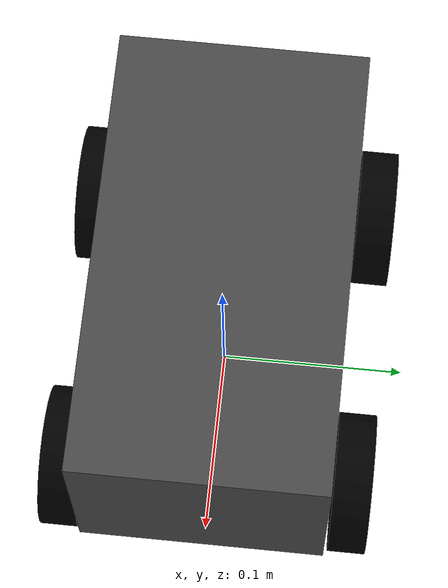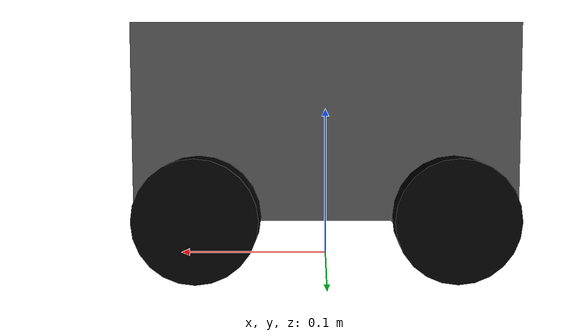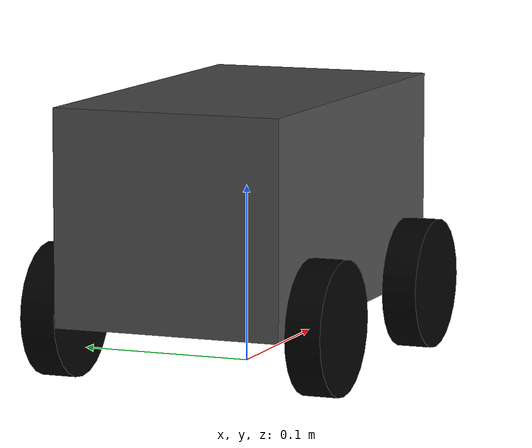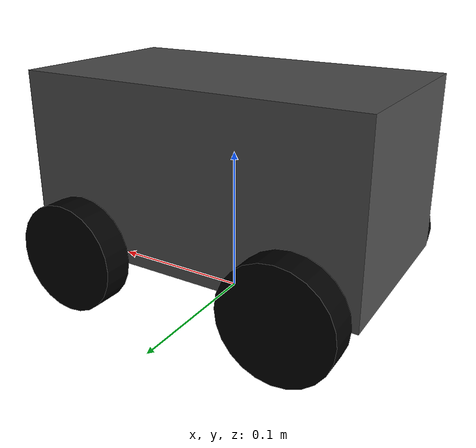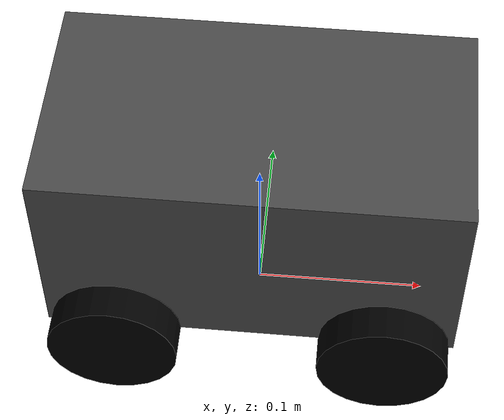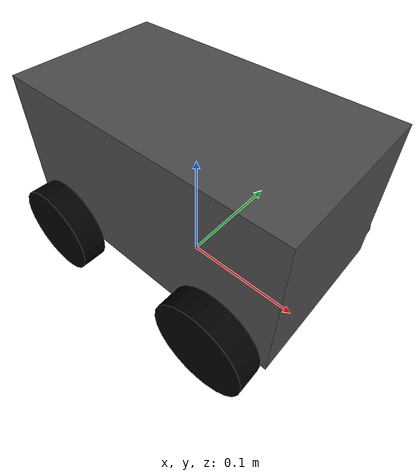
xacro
<?xml version="1.0"?>
<robot xmlns:xacro="http://www.ros.org/wiki/xacro">

  <link name="base_footprint"/>

  <link name="base_link">

    <inertial>
      <origin xyz="0 0 0.09424" rpy="0 0 0"/>
      <mass value="3"/>
      <inertia ixx="0.00783" ixy="0.0" ixz="0.0"
               iyy="0.01741" iyz="0.0"
               izz="0.01803"/>
    </inertial>

    <visual>
      <origin xyz="0 0 0.09424" rpy="0 0 0"/>
      <geometry>
        <box size="0.235 0.130 0.12"/>
      </geometry>
      <material name="chassis_grey">
        <color rgba="0.3 0.3 0.3 1.0"/>
      </material>
    </visual>

    <collision>
      <origin xyz="0 0 0.09424" rpy="0 0 0"/>
      <geometry>
        <box size="0.235 0.130 0.12"/>
      </geometry>
    </collision>
  </link>

  <joint name="base_footprint_to_base_link" type="fixed">
    <parent link="base_footprint"/>
    <child link="base_link"/>
    <origin xyz="0 0 0" rpy="0 0 0"/>
  </joint>

  <!-- ================= WHEELS MACRO ================= -->
  <xacro:macro name="wheel" params="name x y">
    <link name="${name}_link">
      <visual>
        <geometry>
          <cylinder radius="0.03725" length="0.02"/>
        </geometry>

        <material name="wheel_black">
          <color rgba="0.0 0.0 0.0 1.0"/>
        </material>

        <origin xyz="0 0 0" rpy="1.57 0 0"/>
      </visual>

      <inertial>
        <origin xyz="0 0 0" rpy="0 0 0"/>
        <mass value="0.1"/>
        <inertia ixx="0.0001" ixy="0.0" ixz="0.0"
                 iyy="0.0001" iyz="0.0"
                 izz="0.0001"/>
      </inertial>

      <collision>
        <origin xyz="0 0 0" rpy="1.57 0 0"/>
        <geometry>
          <cylinder radius="0.03725" length="0.02"/>
        </geometry>
      </collision>

    </link>

    <joint name="${name}_joint" type="continuous">
      <parent link="base_link"/>
      <child link="${name}_link"/>
      <origin xyz="${x} ${y} 0.03725" rpy= "0 0 0"/>
      <axis xyz="0 1 0"/>
    </joint>
  </xacro:macro>

  <!-- ================= WHEELS ================= -->
  <xacro:wheel name="wheel_fl" x="0.077" y="0.077"/>
  <xacro:wheel name="wheel_fr" x="0.077" y="-0.077"/>
  <xacro:wheel name="wheel_rl" x="-0.077" y="0.077"/>
  <xacro:wheel name="wheel_rr" x="-0.077" y="-0.077"/>

</robot>
